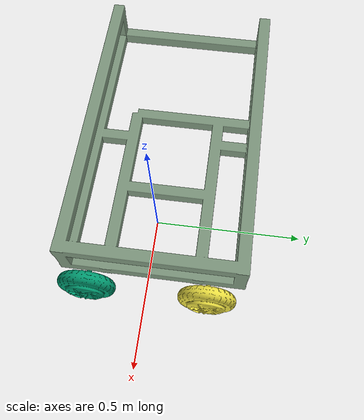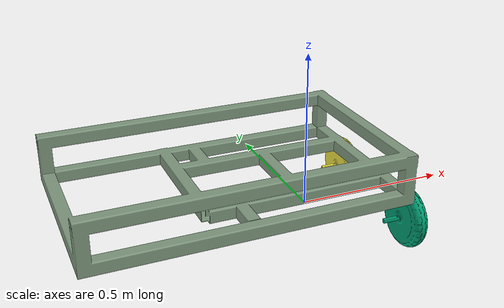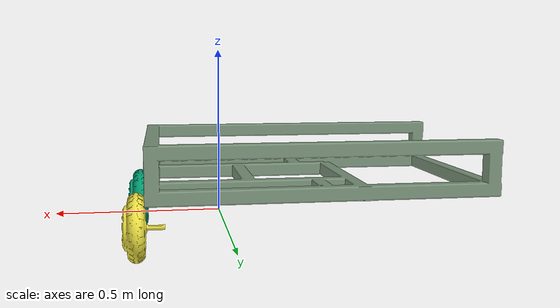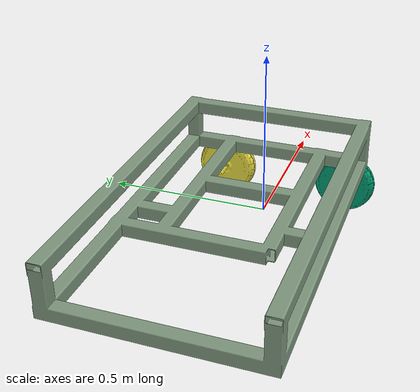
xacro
<?xml version="1.0"?>
<robot xmlns:xacro="http://www.ros.org/wiki/xacro" name="summit_xl"  >

<xacro:include filename="$(find ai)/urdf/mecanum_wheel.urdf.xacro"/>
<xacro:include filename="$(find ai)/urdf/summit_base.urdf.xacro" />
<!--Wheel parameter-->
<xacro:property name="wheel_offset_x" value="0.2225" />
<xacro:property name="wheel_offset_y" value="0.2045" />
<xacro:property name="wheel_offset_z" value="0.0" />

<xacro:macro name="robot">
    <xacro:summit_base/>

    <xacro:mecanum_wheel prefix="summit_front_right" parent="summit_base_footprint" reflect="false">
        <origin xyz="${wheel_offset_x} ${-wheel_offset_y} ${wheel_offset_z}" rpy="0 0 0"/>
    </xacro:mecanum_wheel>
    <xacro:mecanum_wheel prefix="summit_front_left" parent="summit_base_footprint" reflect="true">
        <origin xyz="${wheel_offset_x} ${wheel_offset_y} ${wheel_offset_z}" rpy="0 0 0"/>
    </xacro:mecanum_wheel>
</xacro:macro>
<xacro:robot/>
</robot>

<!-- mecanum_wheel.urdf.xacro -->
<robot xmlns:xacro="http://www.ros.org/wiki/xacro" name="wheel"  >
<!-- constance -->
<xacro:property name="PI" value="3.1415" />
<xacro:property name="wheel_radius" value="0.127"/>
<xacro:property name="wheel_height" value="0.087"/>
<xacro:property name="wheel_mass" value="5"/>

<!-- simple Macro to calculate intertia-->
<xacro:macro name="cylinder_intertia" params="m r h">
    <inertia ixx="${m*(3*r*r+h*h)/12}" ixy="0" ixz="0" iyy="${m*r*r/2}" iyz="0"
                izz="${m*(3*r*r+h*h)/12}" />
</xacro:macro>

<!-- set up of the wheel-->
<xacro:macro name="mecanum_wheel" params="prefix parent *origin reflect">

    <link name="${prefix}_wheel_link">
        <visual>
            <origin xyz="0 0 0" rpy="0 0 0" />
            <xacro:if value="${reflect}">
                <geometry>
                    <mesh filename="package://ai/mesh/AMR/aa.stl" scale="0.001 0.001 0.001"/>
                </geometry>
            </xacro:if>
            <xacro:unless value="${reflect}">
                 <geometry>
                    <mesh filename="package://ai/mesh/AMR/aa.stl" scale="0.001 0.001 0.001"/>
                </geometry>
            </xacro:unless>
        </visual>
        <collision>
            <origin xyz="0 0 0" rpy="0 0 0"/>
            <geometry>
                <cylinder length="${wheel_height}" radius="${wheel_radius}"/>
            </geometry>
        </collision>
        <inertial>
            <mass value="${wheel_mass}"/>
            <origin xyz="0 0 0" />
            <cylinder_intertia m="${wheel_mass}" r="${wheel_radius}" h="${wheel_height}"/>
        </inertial>
    </link>

    <joint name="${prefix}_wheel_joint" type="continuous">
        <parent link="${parent}"/>
        <child link="${prefix}_wheel_link"/>
        <xacro:insert_block name="origin"/>
        <axis xyz="0 1 0" rpy="0 0 0"/>
        <limit effort="100" velocity="100"/>
        <joint_properties damping="0.0" friction="0.0"/>
    </joint>

    <!--tranmission is important to link the joint and the controller-->
    <transmission name="${prefix}_wheel_joint_trans">
    <type>transmission_interface/SimpleTransmission</type>
    <joint name="${prefix}_wheel_joint" >
        <hardwareInterface> hardware_interface/VelocityJointInterface</hardwareInterface>
    </joint>
    <actuator name="${prefix}_wheel_joint_motor">
        <mechanicalReduction>1</mechanicalReduction>
    </actuator>
    </transmission>

    <gazebo reference="${prefix}_wheel_link">
        <mu1 value="1.0"/>
        <mu2 value="1.0"/>
        <kp value="10000000.0"/>
        <kd value="1.0" />
        <fdir1 value="1 0 0"/>
        <turnGravityOff>false</turnGravityOff>
    </gazebo>

</xacro:macro>

</robot>

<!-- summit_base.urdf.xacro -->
<robot xmlns:xacro="http://www.ros.org/wiki/xacro" name="summit_xl"  >
    <xacro:macro name="summit_base">
    <!-- robot mechanical and motor -->
    <xacro:property name="PI" value="3.1415"/>
    <xacro:property name="wheel_width" value="0.175"/>

    <link name="summit_base_footprint">
        <visual>
            <origin xyz="0 0 0" rpy="0 0 0"/>
            <geometry>
                <box size="0.0001 0.0001 0.0001"/>
            </geometry>
        </visual>
    </link>

    <joint name="summit_base_footprint_joint" type="fixed">
        <origin xyz="0 0 ${wheel_radius}" rpy="0 0 0" />
        <parent link="summit_base_footprint"/>
        <child link="summit_base_link"/>
    </joint>

    <link name="summit_base_link">
        <inertial>
            <mass value="125.0" />
            <origin xyz="0 0 0" />
            <inertia ixx="1.391" ixy="0.004" ixz="0.0" iyy="6.853" iyz="0.0" izz="6.125" />
        </inertial>

        <visual>
            <origin xyz="0 0 0" rpy="0 0 0" />
            <geometry>
                 <mesh filename="package://ai/mesh/AMR/Assembly1.stl" scale="0.001 0.001 0.001"/>
            </geometry>

            <material name="darkgrey">
                <color rgba="0.5 0.6 0.5"/>
            </material>
        </visual>
        <collision>
            <origin xyz="0 0 0" rpy="0 0 0" />
            <geometry>
                <mesh filename="package://ai/mesh/AMR/Assembly1.stl" scale="0.001 0.001 0.001" />
            </geometry>
        </collision>
    </link>
    </xacro:macro>
</robot>
